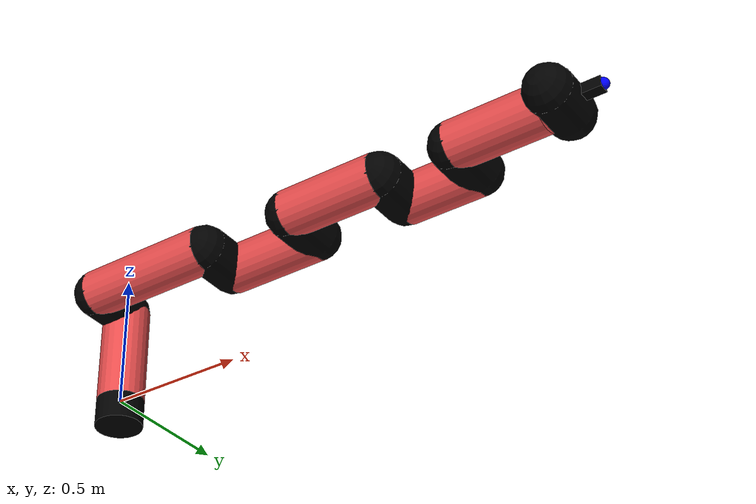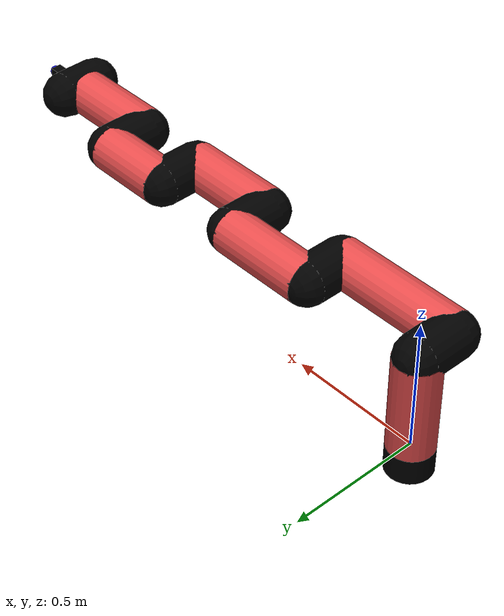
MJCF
<mujoco model="manipulator">
		<compiler angle="degree" coordinate="local" inertiafromgeom="auto" meshdir="meshes/"/>
		<option gravity="0 0 0" integrator="RK4" iterations="30" timestep="0.01"/>

		<default>
		<joint armature="1" limited="true" stiffness="10" damping="15" frictionloss="5.0"/>
		<geom conaffinity="1" condim="3" contype="1" friction=".5 .1 .1" margin="0.002"/>
		<motor ctrllimited="true"/>
		<position ctrllimited="true"/>
		</default>

		<asset>
		<texture builtin="gradient" height="100" rgb1="1.0 1.0 1.0" rgb2="1.0 1.0 1.0" type="skybox" width="100"/>
		<texture builtin="flat" height="32" name="arm_tex" rgb1="0.9 0.3 0.3" type="2d" width="32"/>
		<texture builtin="flat" height="32" name="gripper_tex" rgb1="0.0 0.0 0.0" type="cube" width="32"/>

		<material name="arm_mat" shininess="0.1" specular="0.1" texture="arm_tex"/>
		<material name="gripper_mat" shininess="1" specular="1" texture="gripper_tex"/>
		</asset>

		<worldbody>
		<light cutoff="45" diffuse=".8 .8 .8" dir="0 0.16 -1" directional="false" name="light" pos="0 -2.0 8.0" specular="0.3 0.3 0.3"/>

		<body name="base_link" pos="0 0 -0.1">
		<geom fromto="0 0 0 0 0 0.1" material="arm_mat" name="base_link" rgba="0.0 0.0 0.0 1" size="0.085" type="cylinder"/>
		</body>

		<body name="l1" pos="0 0 0">
<geom fromto="0 0 0 0 0 0.37" material="arm_mat" name="l1" rgba="0.9 0.3 0.3 1" size="0.085" type="cylinder"/>
<geom fromto="0 0 0.37 0 -0.16 0.37" material="arm_mat" name="l1_ex" rgba="0.0 0.0 0.0 1" size="0.085" type="capsule"/>
<joint axis="0 0 1" name="j1" pos="0 0 0" range="-90 90" damping="30.35" frictionloss="11.27"/>

<body name="l2" pos="0 -0.16 0.37">
<geom fromto="0 0 0 0.49 0 0" material="arm_mat" name="l2" rgba="0.9 0.3 0.3 1" size="0.085" type="cylinder"/>
<geom fromto="0.49 0 0 0.49 0.16 0" material="arm_mat" name="l2_ex" rgba="0.0 0.0 0.0 1" size="0.085" type="capsule"/>
<joint axis="0.0 1.0 0.0" name="j2" pos="0 0 0" range="-90 60" damping="34.07" frictionloss="9.09"/>

<body name="l3" pos="0.49 0.16 0">
<geom fromto="0 0 0 0.36 0 0" material="arm_mat" name="l3" rgba="0.9 0.3 0.3 1" size="0.085" type="cylinder"/>
<geom fromto="0.36 0 0 0.36 -0.16 0" material="arm_mat" name="l3_ex" rgba="0.0 0.0 0.0 1" size="0.085" type="capsule"/>
<joint axis="0.0 1.0 0.0" name="j3" pos="0 0 0" range="-30 60" damping="30.43" frictionloss="10.12"/>

<body name="l4" pos="0.36 -0.16 0">
<geom fromto="0 0 0 0.36 0 0" material="arm_mat" name="l4" rgba="0.9 0.3 0.3 1" size="0.085" type="cylinder"/>
<geom fromto="0.36 0 0 0.36 0.16 0" material="arm_mat" name="l4_ex" rgba="0.0 0.0 0.0 1" size="0.085" type="capsule"/>
<joint axis="0.0 1.0 0.0" name="j4" pos="0 0 0" range="-30 60" damping="26.41" frictionloss="12.37"/>

<body name="l5" pos="0.36 0.16 0">
<geom fromto="0 0 0 0.28 0 0" material="arm_mat" name="l5" rgba="0.9 0.3 0.3 1" size="0.085" type="cylinder"/>
<geom fromto="0.28 0 0 0.28 -0.16 0" material="arm_mat" name="l5_ex" rgba="0.0 0.0 0.0 1" size="0.085" type="capsule"/>
<joint axis="0.0 1.0 0.0" name="j5" pos="0 0 0" range="-30 60" damping="25.06" frictionloss="8.8"/>

<body name="l6" pos="0.28 -0.16 0">
<geom fromto="0 0 0 0.33 0 0" material="arm_mat" name="l6" rgba="0.9 0.3 0.3 1" size="0.085" type="cylinder"/>
<joint axis="0.0 1.0 0.0" name="j6" pos="0 0 0" range="-30 60" damping="28.56" frictionloss="7.77"/>

<body name="gripper" pos="0.33 0 0">
<geom fromto="0.05 -0.07 0 0.05 0.07 0" material="gripper_mat" name="gripper" rgba="0.0 0.0 0.0 1" size="0.085" type="capsule"/><joint axis="1 0 0" name="j7" pos="0 0 0" range="-90 90" damping="15" frictionloss="5.0"/><body name="finger" pos="0.1 0 0">
<geom fromto="0 0.0 0 0.1 0.0 0" material="gripper_mat" name="finger" rgba="0.0 0.0 0.0 1" size="0.020 0.06 0.06" type="box"/>
</body>
<site name="current" pos="0.2 0. 0.0" rgba="0. 0. 1.0 1" size="0.02" type="sphere"/>
</body>
</body>
</body>
</body>
</body>
</body>
</body>
</worldbody>
<actuator>
<motor ctrllimited="true" ctrlrange="-1.0 1.0" joint="j1" gear="67.98"/>
<motor ctrllimited="true" ctrlrange="-1.0 1.0" joint="j2" gear="82.3"/>
<motor ctrllimited="true" ctrlrange="-1.0 1.0" joint="j3" gear="87.96"/>
<motor ctrllimited="true" ctrlrange="-1.0 1.0" joint="j4" gear="89.62"/>
<motor ctrllimited="true" ctrlrange="-1.0 1.0" joint="j5" gear="76.27"/>
<motor ctrllimited="true" ctrlrange="-1.0 1.0" joint="j6" gear="63.26"/>
<motor ctrllimited="true" ctrlrange="-1.0 1.0" joint="j7" gear="80"/>
</actuator>
</mujoco>
